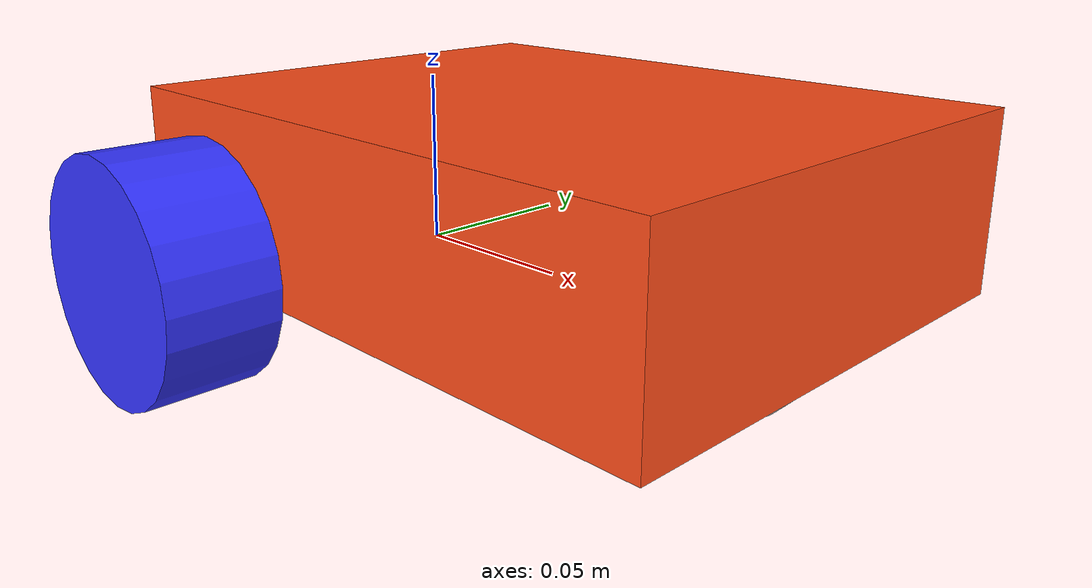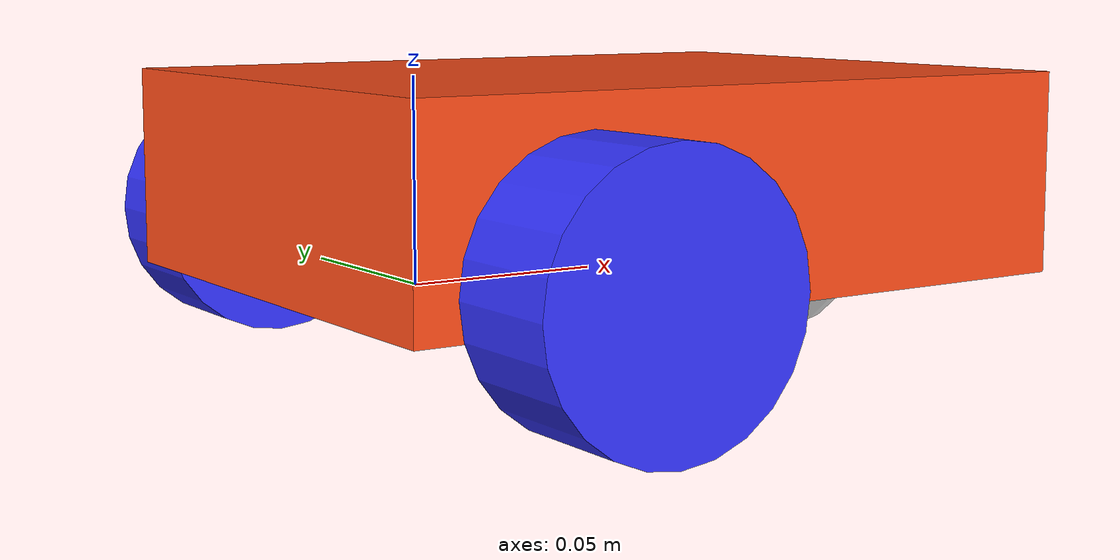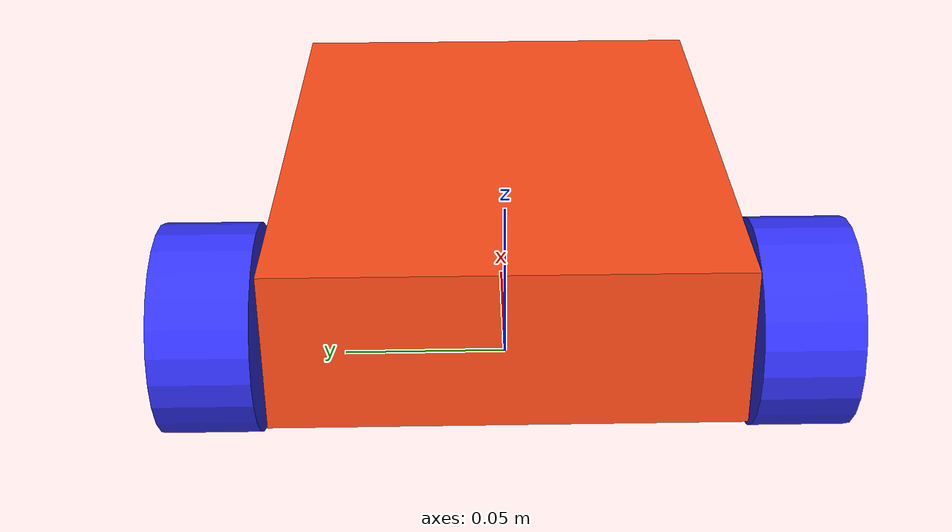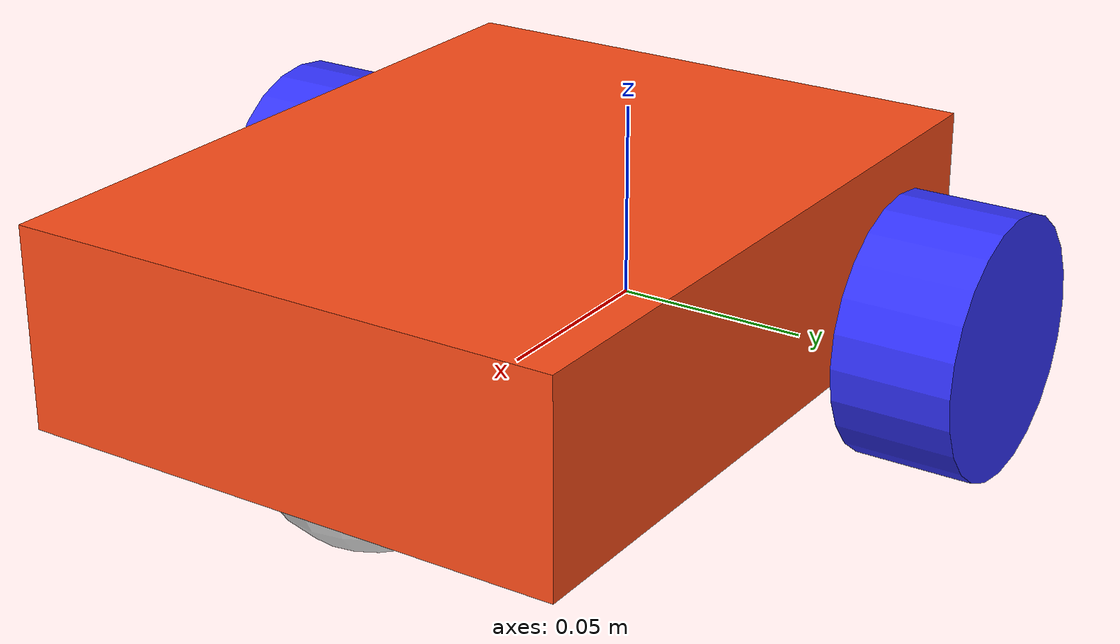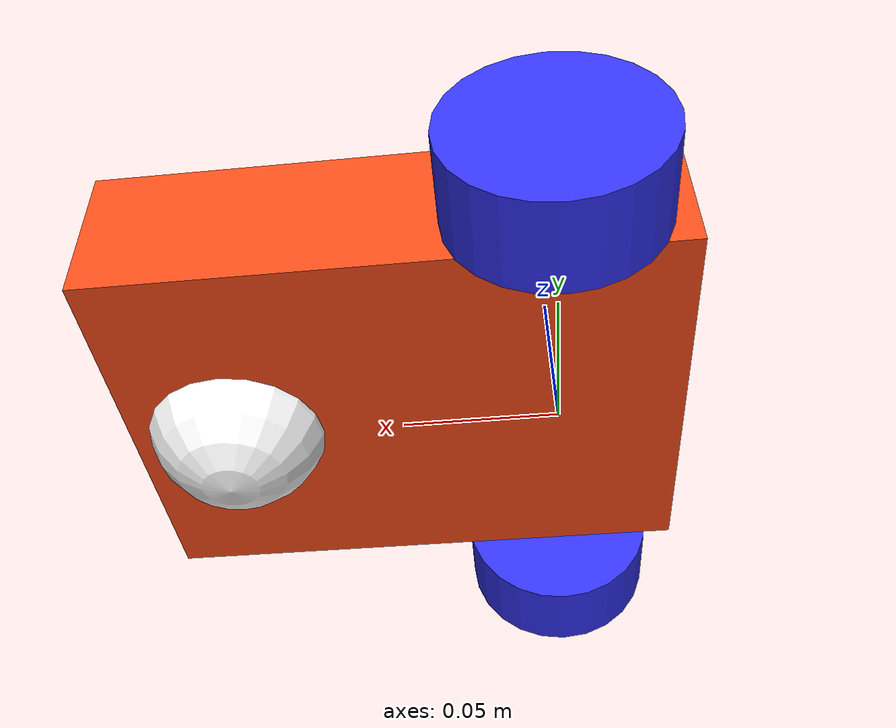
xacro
<?xml version="1.0"?>
<robot name="xacro_properties" xmlns:xacro="http://ros.org/wiki/xacro">
<xacro:include filename="inertial_macros.xacro"/>

<xacro:property name="chassis_length" value="0.18"/>
   <xacro:property name="chassis_width" value="0.14"/>
   <xacro:property name="chassis_height" value="0.05"/>
   <xacro:property name="chassis_mass" value="1.47"/>
   <xacro:property name="wheel_radius" value="0.0325"/>
   <xacro:property name="wheel_thickness" value="0.03"/>
   <xacro:property name="wheel_mass" value="1.47"/>
   <xacro:property name="wheel_offset_x" value="0.226"/>
   <xacro:property name="wheel_offset_y" value="0.09"/>
   <xacro:property name="wheel_offset_z" value="0.01"/>
   <xacro:property name="caster_wheel_radius" value="0.03"/>
   <xacro:property name="caster_wheel_mass" value="0.01"/>
   <xacro:property name="caster_wheel_offset_x" value="${chassis_length - 0.035}"/>
   <xacro:property name="caster_wheel_offset_z" value="${wheel_offset_z - wheel_radius + caster_wheel_radius}"/>

   <material name="white">
       <color rgba="1 1 1 1" />
   </material>

   <material name="orange">
       <color rgba="1 0.3 0.1 1"/>
   </material>

   <material name="blue">
       <color rgba="0.2 0.2 1 1"/>
   </material>

   <material name="black">
       <color rgba="0 0 0 1"/>
   </material>

   <material name="red">
       <color rgba="1 0 0 1"/>
   </material>

   <!-- BASE LINK -->
   <link name="base_footprint"/>

  <joint name="base_footprint_joint" type="fixed">
      <parent link="base_footprint"/>
      <child link="base_link"/>
      <origin xyz="0 0 0" rpy="0 0 0"/>
  </joint>

  <link name="base_link"/>

   <!-- CHASSIS LINK -->

   <joint name="chassis_joint" type="fixed">
       <parent link="base_link"/>
       <child link="chassis"/>
       <origin xyz="-0.04 0 0"/>
   </joint>

   <link name="chassis">
       <visual>
           <origin xyz="${chassis_length/2} 0 ${chassis_height/2}"/>
           <geometry>
               <box size="${chassis_length} ${chassis_width} ${chassis_height}"/>
           </geometry>
           <material name="orange"/>
       </visual>
       <collision>
           <origin xyz="${chassis_length/2} 0 ${chassis_height/2}"/>
           <geometry>
               <box size="${chassis_length} ${chassis_width} ${chassis_height}"/>
           </geometry>
       </collision>
       <xacro:inertial_box mass="0.5" x="${chassis_length}" y="${chassis_width}" z="${chassis_height}">
           <origin xyz="${chassis_length/2} 0 ${chassis_height/2}" rpy="0 0 0"/>
       </xacro:inertial_box>
   </link>

   <!-- LEFT WHEEL LINK -->

   <joint name="left_wheel_joint" type="continuous">
       <parent link="base_link"/>
       <child link="left_wheel"/>
       <origin xyz="0 ${wheel_offset_y} ${wheel_offset_z}" rpy="-${pi/2} 0 0" />
       <axis xyz="0 0 1"/>
   </joint>

   <link name="left_wheel">
       <visual>
           <geometry>
               <cylinder radius="${wheel_radius}" length="${wheel_thickness}"/>
           </geometry>
           <material name="blue"/>
       </visual>
       <collision>
           <geometry>
               <sphere radius="${wheel_radius}"/>
           </geometry>
       </collision>
       <xacro:inertial_cylinder mass="${wheel_mass}" length="${wheel_thickness}" radius="${wheel_radius}">
           <origin xyz="0 0 0" rpy="0 0 0"/>
       </xacro:inertial_cylinder>
   </link>

   <!-- RIGHT WHEEL LINK -->

   <joint name="right_wheel_joint" type="continuous">
       <parent link="base_link"/>
       <child link="right_wheel"/>
       <origin xyz="0 ${-wheel_offset_y} ${wheel_offset_z}" rpy="${pi/2} 0 0" />
       <axis xyz="0 0 -1"/>
   </joint>

   <link name="right_wheel">
       <visual>
           <geometry>
               <cylinder radius="${wheel_radius}" length="${wheel_thickness}"/>
           </geometry>
           <material name="blue"/>
       </visual>
       <collision>
           <geometry>
               <sphere radius="${wheel_radius}"/>
           </geometry>
       </collision>
       <xacro:inertial_cylinder mass="${wheel_mass}" length="${wheel_thickness}" radius="${wheel_radius}">
           <origin xyz="0 0 0" rpy="0 0 0"/>
       </xacro:inertial_cylinder>
   </link>

   <!-- CASTER WHEEL LINK -->

   <joint name="caster_wheel_joint" type="fixed">
       <parent link="chassis"/>
       <child link="caster_wheel"/>
       <origin xyz="${caster_wheel_offset_x} 0 ${caster_wheel_offset_z}"/>
   </joint>

   <link name="caster_wheel">
       <visual>
           <geometry>
               <sphere radius="${caster_wheel_radius}"/>
           </geometry>
           <material name="white"/>
       </visual>
       <collision>
           <geometry>
               <sphere radius="${caster_wheel_radius}"/>
           </geometry>
       </collision>
       <xacro:inertial_sphere mass="${caster_wheel_mass}" radius="${caster_wheel_radius}">
           <origin xyz="0 0 0" rpy="0 0 0"/>
       </xacro:inertial_sphere>
   </link>

    <joint name="imu_joint" type="fixed">
        <parent link="base_link"/>
        <child link="imu_link"/>
        <origin xyz="0 0 0.063" rpy="0 0 0"/>
        <axis xyz="0 0 1"/>
    </joint>

    <link name="imu_link"/>

    <joint name="scan_joint" type="fixed">
        <parent link="base_link"/>
        <child link="base_scan"/>
        <origin xyz="0.08 0 0.1" rpy="0 0 0"/>
    </joint>

    <link name="base_scan" />

</robot>

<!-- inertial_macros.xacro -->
<robot name="inertial_macros" xmlns:xacro="http://ros.org/wiki/xacro">

<xacro:macro name="inertial_sphere" params="mass radius *origin">
    <inertial>
      <xacro:insert_block name="origin"/>
        <mass value="${mass}" />
          <inertia ixx="${(2/5) * mass * (radius*radius)}" ixy="0.0" ixz="0.0"
                   iyy="${(2/5) * mass * (radius*radius)}" iyz="0.0"
                   izz="${(2/5) * mass * (radius*radius)}" />
       </inertial>
   </xacro:macro>

   <xacro:macro name="inertial_box" params="mass x y z *origin">
       <inertial>
           <xacro:insert_block name="origin"/>
           <mass value="${mass}" />
           <inertia ixx="${(1/12) * mass * (y*y+z*z)}" ixy="0.0" ixz="0.0"
                   iyy="${(1/12) * mass * (x*x+z*z)}" iyz="0.0"
                   izz="${(1/12) * mass * (x*x+y*y)}" />
       </inertial>
   </xacro:macro>

   <xacro:macro name="inertial_cylinder" params="mass length radius *origin">
       <inertial>
           <xacro:insert_block name="origin"/>
           <mass value="${mass}" />
           <inertia ixx="${(1/12) * mass * (3*radius*radius + length*length)}" ixy="0.0" ixz="0.0"
                   iyy="${(1/12) * mass * (3*radius*radius + length*length)}" iyz="0.0"
                   izz="${(1/2) * mass * (radius*radius)}" />
       </inertial>
   </xacro:macro>
</robot>
